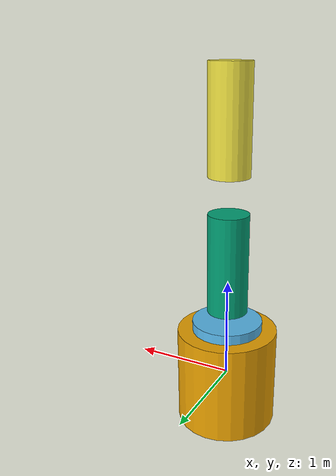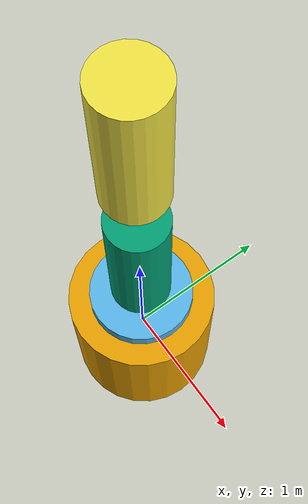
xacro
<?xml version="1.0" ?>

<robot name="basicarm" xmlns:xacro="http://www.ros.org/wiki/xacro">
    <link name="base_link">
        <visual>
            <origin rpy="0 0 0" xyz="0 0 0"/>
            <geometry>
                <cylinder radius="0.5" length="1"/>
            </geometry>
        </visual>
    </link>

    <joint name="base_link__link_01" type="revolute">
        <axis xyz="0 0 1" />
        <limit effort="1000.0" lower="-3.14" upper="3.14" velocity="0.5"/>
        <origin py="0 0 0" xyz="0 0 0.5"/>
        <parent link="base_link"/>
        <child link="link1"/>
    </joint>

    <link name="link1">
        <visual>
            <origin rpy="0 0 0" xyz="0 0 0"/>
            <geometry>
                <cylinder radius="0.35" length="0.2"/>
            </geometry>
        </visual>
    </link>

    <joint name="link1__link_2" type="revolute">
        <axis xyz="0 1 0" />
        <limit effort="1000.0" lower="-3.14" upper="3.14" velocity="0.5"/>
        <origin py="0 0 0" xyz="0 0 0.7"/>
        <parent link="link1"/>
        <child link="link2"/>
    </joint>

    <link name="link2">
        <visual>
            <origin rpy="0 0 0" xyz="0 0 0"/>
            <geometry>
                <cylinder radius="0.2" length="1.0"/>
            </geometry>
        </visual>
    </link>

    <joint name="link2__link_3" type="revolute">
        <axis xyz="0 1 0" />
        <limit effort="1000.0" lower="-3.14" upper="3.14" velocity="0.5"/>
        <origin py="0 0 0" xyz="0 0 1.35"/>
        <parent link="link2"/>
        <child link="link3"/>
    </joint>

    <link name="link3">
        <visual>
            <origin rpy="0 0 0" xyz="0 0 0"/>
            <geometry>
                <cylinder radius="0.2" length="1.0"/>
            </geometry>
        </visual>
    </link>

</robot>
